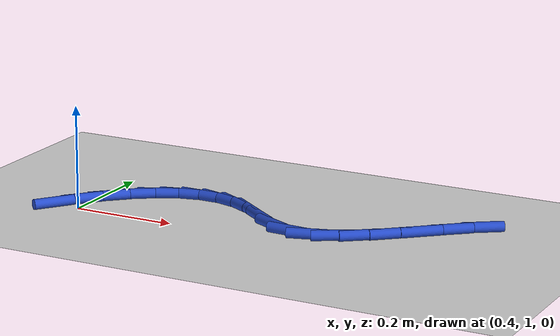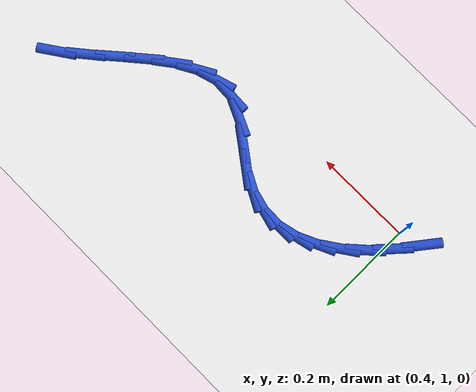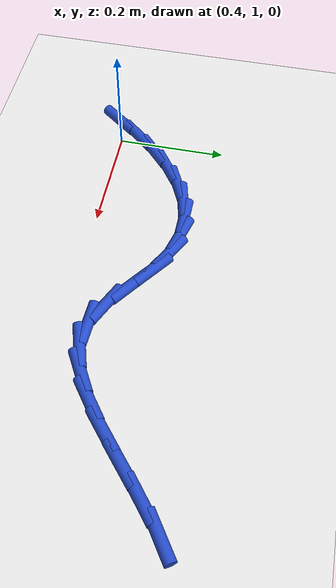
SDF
<sdf version="1.6">
 <world name="default">
  <model name="ground_plane">
   <static>1</static>
   <link name="link">
    <collision name="collision">
     <geometry><plane><normal>0 0 1</normal><size>100 100</size></plane></geometry>
     <surface><friction><ode><mu>100</mu><mu2>50</mu2></ode></friction></surface>
    </collision>
    <visual name="visual">
     <cast_shadows>0</cast_shadows>
     <geometry><plane><normal>0 0 1</normal><size>100 100</size></plane></geometry>
     <material>
      <script><uri>file://media/materials/scripts/gazebo.material</uri><name>Gazebo/WhiteGlow</name></script>
     </material>
    </visual>
   </link>
  </model>
  <model name="line">
   <link name="link_18">
    <pose>0.35335391993427884 0.9867058190503755 0.01 0 1.57 0.9141713987903168</pose>
    <collision name="collision">
     <geometry><cylinder><radius>0.01</radius><length>0.08</length></cylinder></geometry>
    </collision>
    <visual name="visual">
     <material>
      <script><name>Gazebo/Blue</name><uri>file://media/materials/scripts/gazebo.material</uri></script>
     </material>
     <geometry><cylinder><radius>0.01</radius><length>0.08</length></cylinder></geometry>
    </visual>
   </link>
   <link name="link_19">
    <pose>0.3880773156326211 1.031759535872405 0.01 0 1.57 0.8337907248591343</pose>
    <collision name="collision">
     <geometry><cylinder><radius>0.01</radius><length>0.08</length></cylinder></geometry>
    </collision>
    <visual name="visual">
     <material>
      <script><name>Gazebo/Blue</name><uri>file://media/materials/scripts/gazebo.material</uri></script>
     </material>
     <geometry><cylinder><radius>0.01</radius><length>0.08</length></cylinder></geometry>
    </visual>
   </link>
   <link name="link_20">
    <pose>0.4238572560879973 1.0711815342581363 0.01 0 1.57 0.7317164382991661</pose>
    <collision name="collision">
     <geometry><cylinder><radius>0.01</radius><length>0.08</length></cylinder></geometry>
    </collision>
    <visual name="visual">
     <material>
      <script><name>Gazebo/Blue</name><uri>file://media/materials/scripts/gazebo.material</uri></script>
     </material>
     <geometry><cylinder><radius>0.01</radius><length>0.08</length></cylinder></geometry>
    </visual>
   </link>
   <link name="link_21">
    <pose>0.4606167565732594 1.104192057633436 0.01 0 1.57 0.6009630091748297</pose>
    <collision name="collision">
     <geometry><cylinder><radius>0.01</radius><length>0.08</length></cylinder></geometry>
    </collision>
    <visual name="visual">
     <material>
      <script><name>Gazebo/Blue</name><uri>file://media/materials/scripts/gazebo.material</uri></script>
     </material>
     <geometry><cylinder><radius>0.01</radius><length>0.08</length></cylinder></geometry>
    </visual>
   </link>
   <link name="link_22">
    <pose>0.4982788323612588 1.1300113494241695 0.01 0 1.57 0.43422189203036354</pose>
    <collision name="collision">
     <geometry><cylinder><radius>0.01</radius><length>0.08</length></cylinder></geometry>
    </collision>
    <visual name="visual">
     <material>
      <script><name>Gazebo/Blue</name><uri>file://media/materials/scripts/gazebo.material</uri></script>
     </material>
     <geometry><cylinder><radius>0.01</radius><length>0.08</length></cylinder></geometry>
    </visual>
   </link>
   <link name="link_23">
    <pose>0.5367664987248468 1.147859653056202 0.01 0 1.57 0.2278399461308863</pose>
    <collision name="collision">
     <geometry><cylinder><radius>0.01</radius><length>0.08</length></cylinder></geometry>
    </collision>
    <visual name="visual">
     <material>
      <script><name>Gazebo/Blue</name><uri>file://media/materials/scripts/gazebo.material</uri></script>
     </material>
     <geometry><cylinder><radius>0.01</radius><length>0.08</length></cylinder></geometry>
    </visual>
   </link>
   <link name="link_24">
    <pose>0.5760027709368756 1.1569572119553997 0.01 0 1.57 -0.010848115206276213</pose>
    <collision name="collision">
     <geometry><cylinder><radius>0.01</radius><length>0.08</length></cylinder></geometry>
    </collision>
    <visual name="visual">
     <material>
      <script><name>Gazebo/Blue</name><uri>file://media/materials/scripts/gazebo.material</uri></script>
     </material>
     <geometry><cylinder><radius>0.01</radius><length>0.08</length></cylinder></geometry>
    </visual>
   </link>
   <link name="link_25">
    <pose>0.6159106642701957 1.1565242695476279 0.01 0 1.57 -0.25927710377033897</pose>
    <collision name="collision">
     <geometry><cylinder><radius>0.01</radius><length>0.08</length></cylinder></geometry>
    </collision>
    <visual name="visual">
     <material>
      <script><name>Gazebo/Blue</name><uri>file://media/materials/scripts/gazebo.material</uri></script>
     </material>
     <geometry><cylinder><radius>0.01</radius><length>0.08</length></cylinder></geometry>
    </visual>
   </link>
   <link name="link_26">
    <pose>0.6564131939976598 1.1457810692587531 0.01 0 1.57 -0.4890548217886547</pose>
    <collision name="collision">
     <geometry><cylinder><radius>0.01</radius><length>0.08</length></cylinder></geometry>
    </collision>
    <visual name="visual">
     <material>
      <script><name>Gazebo/Blue</name><uri>file://media/materials/scripts/gazebo.material</uri></script>
     </material>
     <geometry><cylinder><radius>0.01</radius><length>0.08</length></cylinder></geometry>
    </visual>
   </link>
   <link name="link_27">
    <pose>0.6974333999550183 1.1239511545310417 0.01 0 1.57 -0.6419653435030096</pose>
    <collision name="collision">
     <geometry><cylinder><radius>0.01</radius><length>0.08</length></cylinder></geometry>
    </collision>
    <visual name="visual">
     <material>
      <script><name>Gazebo/Blue</name><uri>file://media/materials/scripts/gazebo.material</uri></script>
     </material>
     <geometry><cylinder><radius>0.01</radius><length>0.08</length></cylinder></geometry>
    </visual>
   </link>
   <link name="link_28">
    <pose>0.7389142836813183 1.092939916203494 0.01 0 1.57 -0.6328869203328106</pose>
    <collision name="collision">
     <geometry><cylinder><radius>0.01</radius><length>0.08</length></cylinder></geometry>
    </collision>
    <visual name="visual">
     <material>
      <script><name>Gazebo/Blue</name><uri>file://media/materials/scripts/gazebo.material</uri></script>
     </material>
     <geometry><cylinder><radius>0.01</radius><length>0.08</length></cylinder></geometry>
    </visual>
   </link>
   <link name="link_29">
    <pose>0.7808548339258498 1.0621746059414716 0.01 0 1.57 -0.43688544674065666</pose>
    <collision name="collision">
     <geometry><cylinder><radius>0.01</radius><length>0.08</length></cylinder></geometry>
    </collision>
    <visual name="visual">
     <material>
      <script><name>Gazebo/Blue</name><uri>file://media/materials/scripts/gazebo.material</uri></script>
     </material>
     <geometry><cylinder><radius>0.01</radius><length>0.08</length></cylinder></geometry>
    </visual>
   </link>
   <link name="link_30">
    <pose>0.8232637040183024 1.0423704591702587 0.01 0 1.57 -0.05161646363902077</pose>
    <collision name="collision">
     <geometry><cylinder><radius>0.01</radius><length>0.08</length></cylinder></geometry>
    </collision>
    <visual name="visual">
     <material>
      <script><name>Gazebo/Blue</name><uri>file://media/materials/scripts/gazebo.material</uri></script>
     </material>
     <geometry><cylinder><radius>0.01</radius><length>0.08</length></cylinder></geometry>
    </visual>
   </link>
   <link name="link_31">
    <pose>0.8661343619887623 1.0401556601295012 0.01 0 1.57 0.29264150111232223</pose>
    <collision name="collision">
     <geometry><cylinder><radius>0.01</radius><length>0.08</length></cylinder></geometry>
    </collision>
    <visual name="visual">
     <material>
      <script><name>Gazebo/Blue</name><uri>file://media/materials/scripts/gazebo.material</uri></script>
     </material>
     <geometry><cylinder><radius>0.01</radius><length>0.08</length></cylinder></geometry>
    </visual>
   </link>
   <link name="link_32">
    <pose>0.9094269889338671 1.0531993731935831 0.01 0 1.57 0.5161902902812335</pose>
    <collision name="collision">
     <geometry><cylinder><radius>0.01</radius><length>0.08</length></cylinder></geometry>
    </collision>
    <visual name="visual">
     <material>
      <script><name>Gazebo/Blue</name><uri>file://media/materials/scripts/gazebo.material</uri></script>
     </material>
     <geometry><cylinder><radius>0.01</radius><length>0.08</length></cylinder></geometry>
    </visual>
   </link>
   <link name="link_33">
    <pose>0.9530973525752291 1.077982923833143 0.01 0 1.57 0.6435274716453541</pose>
    <collision name="collision">
     <geometry><cylinder><radius>0.01</radius><length>0.08</length></cylinder></geometry>
    </collision>
    <visual name="visual">
     <material>
      <script><name>Gazebo/Blue</name><uri>file://media/materials/scripts/gazebo.material</uri></script>
     </material>
     <geometry><cylinder><radius>0.01</radius><length>0.08</length></cylinder></geometry>
    </visual>
   </link>
   <link name="link_34">
    <pose>0.9971012206344609 1.11098763751882 0.01 0 1.57 0.7052542133454133</pose>
    <collision name="collision">
     <geometry><cylinder><radius>0.01</radius><length>0.08</length></cylinder></geometry>
    </collision>
    <visual name="visual">
     <material>
      <script><name>Gazebo/Blue</name><uri>file://media/materials/scripts/gazebo.material</uri></script>
     </material>
     <geometry><cylinder><radius>0.01</radius><length>0.08</length></cylinder></geometry>
    </visual>
   </link>
   <link name="link_35">
    <pose>1.041394360833174 1.1486948397212509 0.01 0 1.57 0.717813154101936</pose>
    <collision name="collision">
     <geometry><cylinder><radius>0.01</radius><length>0.08</length></cylinder></geometry>
    </collision>
    <visual name="visual">
     <material>
      <script><name>Gazebo/Blue</name><uri>file://media/materials/scripts/gazebo.material</uri></script>
     </material>
     <geometry><cylinder><radius>0.01</radius><length>0.08</length></cylinder></geometry>
    </visual>
   </link>
   <link name="link_36">
    <pose>1.085932540892981 1.1875858559110752 0.01 0 1.57 0.6850801937311799</pose>
    <collision name="collision">
     <geometry><cylinder><radius>0.01</radius><length>0.08</length></cylinder></geometry>
    </collision>
    <visual name="visual">
     <material>
      <script><name>Gazebo/Blue</name><uri>file://media/materials/scripts/gazebo.material</uri></script>
     </material>
     <geometry><cylinder><radius>0.01</radius><length>0.08</length></cylinder></geometry>
    </visual>
   </link>
   <link name="link_37">
    <pose>1.1306715285354934 1.224142011558931 0.01 0 1.57 0.5998165933045204</pose>
    <collision name="collision">
     <geometry><cylinder><radius>0.01</radius><length>0.08</length></cylinder></geometry>
    </collision>
    <visual name="visual">
     <material>
      <script><name>Gazebo/Blue</name><uri>file://media/materials/scripts/gazebo.material</uri></script>
     </material>
     <geometry><cylinder><radius>0.01</radius><length>0.08</length></cylinder></geometry>
    </visual>
   </link>
  </model>
 </world>
</sdf>
